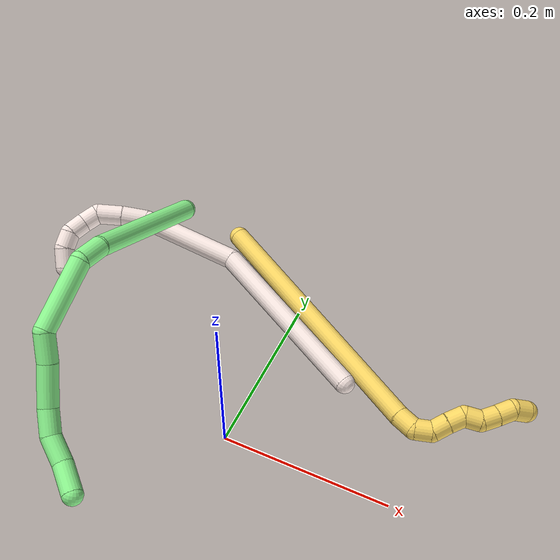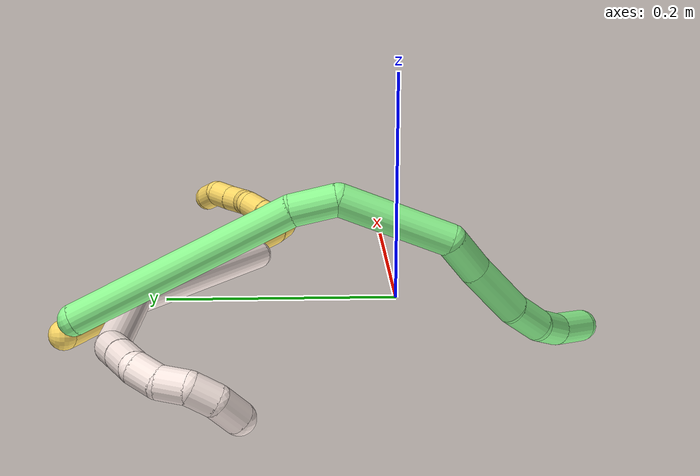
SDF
<sdf version="1.7">
 <world name="default">
  <model name="5">
   <static>0</static>
   <link name="5">
    <collision name="collision-cylinder-e_1_1_4">
     <pose>0.126631 -0.028595 -0.106588 2.87949 0.853961 2.57763</pose>
     <geometry><cylinder><radius>0.0125</radius><length>0.335942</length></cylinder></geometry>
     <surface>
      <friction><ode><mu>1.16</mu><mu2>1.16</mu2><slip1>0</slip1><slip2>0</slip2></ode></friction>
      <contact><ode><kp>1e+06</kp><kd>1</kd><max_vel>0</max_vel><min_depth>0.001</min_depth></ode></contact>
     </surface>
    </collision>
    <visual name="visual-cylinder-e_1_1_4">
     <pose>0.126631 -0.028595 -0.106588 2.87949 0.853961 2.57763</pose>
     <geometry><cylinder><radius>0.0125</radius><length>0.335942</length></cylinder></geometry>
     <material><ambient>1 0.858824 0.4 1</ambient></material>
    </visual>
    <collision name="collision-cylinder-e_2_4_5">
     <pose>0.262942 -0.059459 -0.219427 2.7932 0.968854 2.49616</pose>
     <geometry><cylinder><radius>0.0125</radius><length>0.023487</length></cylinder></geometry>
     <surface>
      <friction><ode><mu>1.16</mu><mu2>1.16</mu2><slip1>0</slip1><slip2>0</slip2></ode></friction>
      <contact><ode><kp>1e+06</kp><kd>1</kd><max_vel>0</max_vel><min_depth>0.001</min_depth></ode></contact>
     </surface>
    </collision>
    <visual name="visual-cylinder-e_2_4_5">
     <pose>0.262942 -0.059459 -0.219427 2.7932 0.968854 2.49616</pose>
     <geometry><cylinder><radius>0.0125</radius><length>0.023487</length></cylinder></geometry>
     <material><ambient>1 0.858824 0.4 1</ambient></material>
    </visual>
    <collision name="collision-cylinder-e_3_5_6">
     <pose>0.28267 -0.063217 -0.22434 0.838577 1.37428 0.701238</pose>
     <geometry><cylinder><radius>0.0125</radius><length>0.020491</length></cylinder></geometry>
     <surface>
      <friction><ode><mu>1.16</mu><mu2>1.16</mu2><slip1>0</slip1><slip2>0</slip2></ode></friction>
      <contact><ode><kp>1e+06</kp><kd>1</kd><max_vel>0</max_vel><min_depth>0.001</min_depth></ode></contact>
     </surface>
    </collision>
    <visual name="visual-cylinder-e_3_5_6">
     <pose>0.28267 -0.063217 -0.22434 0.838577 1.37428 0.701238</pose>
     <geometry><cylinder><radius>0.0125</radius><length>0.020491</length></cylinder></geometry>
     <material><ambient>1 0.858824 0.4 1</ambient></material>
    </visual>
    <collision name="collision-cylinder-e_4_6_7">
     <pose>0.299671 -0.068193 -0.216684 0.504385 0.76679 0.207128</pose>
     <geometry><cylinder><radius>0.0125</radius><length>0.020042</length></cylinder></geometry>
     <surface>
      <friction><ode><mu>1.16</mu><mu2>1.16</mu2><slip1>0</slip1><slip2>0</slip2></ode></friction>
      <contact><ode><kp>1e+06</kp><kd>1</kd><max_vel>0</max_vel><min_depth>0.001</min_depth></ode></contact>
     </surface>
    </collision>
    <visual name="visual-cylinder-e_4_6_7">
     <pose>0.299671 -0.068193 -0.216684 0.504385 0.76679 0.207128</pose>
     <geometry><cylinder><radius>0.0125</radius><length>0.020042</length></cylinder></geometry>
     <material><ambient>1 0.858824 0.4 1</ambient></material>
    </visual>
    <collision name="collision-cylinder-e_5_7_8">
     <pose>0.314091 -0.07492 -0.204549 0.50821 0.842515 0.231709</pose>
     <geometry><cylinder><radius>0.0125</radius><length>0.020009</length></cylinder></geometry>
     <surface>
      <friction><ode><mu>1.16</mu><mu2>1.16</mu2><slip1>0</slip1><slip2>0</slip2></ode></friction>
      <contact><ode><kp>1e+06</kp><kd>1</kd><max_vel>0</max_vel><min_depth>0.001</min_depth></ode></contact>
     </surface>
    </collision>
    <visual name="visual-cylinder-e_5_7_8">
     <pose>0.314091 -0.07492 -0.204549 0.50821 0.842515 0.231709</pose>
     <geometry><cylinder><radius>0.0125</radius><length>0.020009</length></cylinder></geometry>
     <material><ambient>1 0.858824 0.4 1</ambient></material>
    </visual>
    <collision name="collision-cylinder-e_6_8_9">
     <pose>0.331555 -0.078117 -0.198243 -0.089246 1.52171 -0.084974</pose>
     <geometry><cylinder><radius>0.0125</radius><length>0.02002</length></cylinder></geometry>
     <surface>
      <friction><ode><mu>1.16</mu><mu2>1.16</mu2><slip1>0</slip1><slip2>0</slip2></ode></friction>
      <contact><ode><kp>1e+06</kp><kd>1</kd><max_vel>0</max_vel><min_depth>0.001</min_depth></ode></contact>
     </surface>
    </collision>
    <visual name="visual-cylinder-e_6_8_9">
     <pose>0.331555 -0.078117 -0.198243 -0.089246 1.52171 -0.084974</pose>
     <geometry><cylinder><radius>0.0125</radius><length>0.02002</length></cylinder></geometry>
     <material><ambient>1 0.858824 0.4 1</ambient></material>
    </visual>
    <collision name="collision-cylinder-e_7_9_10">
     <pose>0.349531 -0.07933 -0.191856 0.209971 0.923527 0.104781</pose>
     <geometry><cylinder><radius>0.0125</radius><length>0.020001</length></cylinder></geometry>
     <surface>
      <friction><ode><mu>1.16</mu><mu2>1.16</mu2><slip1>0</slip1><slip2>0</slip2></ode></friction>
      <contact><ode><kp>1e+06</kp><kd>1</kd><max_vel>0</max_vel><min_depth>0.001</min_depth></ode></contact>
     </surface>
    </collision>
    <visual name="visual-cylinder-e_7_9_10">
     <pose>0.349531 -0.07933 -0.191856 0.209971 0.923527 0.104781</pose>
     <geometry><cylinder><radius>0.0125</radius><length>0.020001</length></cylinder></geometry>
     <material><ambient>1 0.858824 0.4 1</ambient></material>
    </visual>
    <collision name="collision-cylinder-e_8_10_11">
     <pose>0.365239 -0.082466 -0.179894 0.300566 0.883287 0.14294</pose>
     <geometry><cylinder><radius>0.0125</radius><length>0.020006</length></cylinder></geometry>
     <surface>
      <friction><ode><mu>1.16</mu><mu2>1.16</mu2><slip1>0</slip1><slip2>0</slip2></ode></friction>
      <contact><ode><kp>1e+06</kp><kd>1</kd><max_vel>0</max_vel><min_depth>0.001</min_depth></ode></contact>
     </surface>
    </collision>
    <visual name="visual-cylinder-e_8_10_11">
     <pose>0.365239 -0.082466 -0.179894 0.300566 0.883287 0.14294</pose>
     <geometry><cylinder><radius>0.0125</radius><length>0.020006</length></cylinder></geometry>
     <material><ambient>1 0.858824 0.4 1</ambient></material>
    </visual>
    <collision name="collision-cylinder-e_9_11_2">
     <pose>0.381737 -0.081172 -0.170213 -0.720224 1.06876 -0.438511</pose>
     <geometry><cylinder><radius>0.0125</radius><length>0.020002</length></cylinder></geometry>
     <surface>
      <friction><ode><mu>1.16</mu><mu2>1.16</mu2><slip1>0</slip1><slip2>0</slip2></ode></friction>
      <contact><ode><kp>1e+06</kp><kd>1</kd><max_vel>0</max_vel><min_depth>0.001</min_depth></ode></contact>
     </surface>
    </collision>
    <visual name="visual-cylinder-e_9_11_2">
     <pose>0.381737 -0.081172 -0.170213 -0.720224 1.06876 -0.438511</pose>
     <geometry><cylinder><radius>0.0125</radius><length>0.020002</length></cylinder></geometry>
     <material><ambient>1 0.858824 0.4 1</ambient></material>
    </visual>
    <collision name="collision-sphere-2">
     <pose>0.390504 -0.077997 -0.166596 0 -0 0</pose>
     <geometry><sphere><radius>0.0125</radius></sphere></geometry>
     <surface>
      <friction><ode><mu>1.16</mu><mu2>1.16</mu2><slip1>0</slip1><slip2>0</slip2></ode></friction>
      <contact><ode><kp>1e+06</kp><kd>1</kd><max_vel>0</max_vel><min_depth>0.001</min_depth></ode></contact>
     </surface>
    </collision>
    <visual name="visual-sphere-2">
     <pose>0.390504 -0.077997 -0.166596 0 -0 0</pose>
     <geometry><sphere><radius>0.0125</radius></sphere></geometry>
     <material><ambient>1 0.858824 0.4 1</ambient></material>
    </visual>
    <collision name="collision-sphere-11">
     <pose>0.37297 -0.084346 -0.173831 0 -0 0</pose>
     <geometry><sphere><radius>0.0125</radius></sphere></geometry>
     <surface>
      <friction><ode><mu>1.16</mu><mu2>1.16</mu2><slip1>0</slip1><slip2>0</slip2></ode></friction>
      <contact><ode><kp>1e+06</kp><kd>1</kd><max_vel>0</max_vel><min_depth>0.001</min_depth></ode></contact>
     </surface>
    </collision>
    <visual name="visual-sphere-11">
     <pose>0.37297 -0.084346 -0.173831 0 -0 0</pose>
     <geometry><sphere><radius>0.0125</radius></sphere></geometry>
     <material><ambient>1 0.858824 0.4 1</ambient></material>
    </visual>
    <collision name="collision-sphere-10">
     <pose>0.357508 -0.080587 -0.185958 0 -0 0</pose>
     <geometry><sphere><radius>0.0125</radius></sphere></geometry>
     <surface>
      <friction><ode><mu>1.16</mu><mu2>1.16</mu2><slip1>0</slip1><slip2>0</slip2></ode></friction>
      <contact><ode><kp>1e+06</kp><kd>1</kd><max_vel>0</max_vel><min_depth>0.001</min_depth></ode></contact>
     </surface>
    </collision>
    <visual name="visual-sphere-10">
     <pose>0.357508 -0.080587 -0.185958 0 -0 0</pose>
     <geometry><sphere><radius>0.0125</radius></sphere></geometry>
     <material><ambient>1 0.858824 0.4 1</ambient></material>
    </visual>
    <collision name="collision-sphere-9">
     <pose>0.341553 -0.078073 -0.197754 0 -0 0</pose>
     <geometry><sphere><radius>0.0125</radius></sphere></geometry>
     <surface>
      <friction><ode><mu>1.16</mu><mu2>1.16</mu2><slip1>0</slip1><slip2>0</slip2></ode></friction>
      <contact><ode><kp>1e+06</kp><kd>1</kd><max_vel>0</max_vel><min_depth>0.001</min_depth></ode></contact>
     </surface>
    </collision>
    <visual name="visual-sphere-9">
     <pose>0.341553 -0.078073 -0.197754 0 -0 0</pose>
     <geometry><sphere><radius>0.0125</radius></sphere></geometry>
     <material><ambient>1 0.858824 0.4 1</ambient></material>
    </visual>
    <collision name="collision-sphere-4">
     <pose>0.253263 -0.057189 -0.213177 0 -0 0</pose>
     <geometry><sphere><radius>0.0125</radius></sphere></geometry>
     <surface>
      <friction><ode><mu>1.16</mu><mu2>1.16</mu2><slip1>0</slip1><slip2>0</slip2></ode></friction>
      <contact><ode><kp>1e+06</kp><kd>1</kd><max_vel>0</max_vel><min_depth>0.001</min_depth></ode></contact>
     </surface>
    </collision>
    <visual name="visual-sphere-4">
     <pose>0.253263 -0.057189 -0.213177 0 -0 0</pose>
     <geometry><sphere><radius>0.0125</radius></sphere></geometry>
     <material><ambient>1 0.858824 0.4 1</ambient></material>
    </visual>
    <collision name="collision-sphere-1">
     <geometry><sphere><radius>0.0125</radius></sphere></geometry>
     <surface>
      <friction><ode><mu>1.16</mu><mu2>1.16</mu2><slip1>0</slip1><slip2>0</slip2></ode></friction>
      <contact><ode><kp>1e+06</kp><kd>1</kd><max_vel>0</max_vel><min_depth>0.001</min_depth></ode></contact>
     </surface>
    </collision>
    <visual name="visual-sphere-1">
     <geometry><sphere><radius>0.0125</radius></sphere></geometry>
     <material><ambient>1 0.858824 0.4 1</ambient></material>
    </visual>
    <collision name="collision-sphere-8">
     <pose>0.321557 -0.078161 -0.198732 0 -0 0</pose>
     <geometry><sphere><radius>0.0125</radius></sphere></geometry>
     <surface>
      <friction><ode><mu>1.16</mu><mu2>1.16</mu2><slip1>0</slip1><slip2>0</slip2></ode></friction>
      <contact><ode><kp>1e+06</kp><kd>1</kd><max_vel>0</max_vel><min_depth>0.001</min_depth></ode></contact>
     </surface>
    </collision>
    <visual name="visual-sphere-8">
     <pose>0.321557 -0.078161 -0.198732 0 -0 0</pose>
     <geometry><sphere><radius>0.0125</radius></sphere></geometry>
     <material><ambient>1 0.858824 0.4 1</ambient></material>
    </visual>
    <collision name="collision-sphere-5">
     <pose>0.272622 -0.06173 -0.225677 0 -0 0</pose>
     <geometry><sphere><radius>0.0125</radius></sphere></geometry>
     <surface>
      <friction><ode><mu>1.16</mu><mu2>1.16</mu2><slip1>0</slip1><slip2>0</slip2></ode></friction>
      <contact><ode><kp>1e+06</kp><kd>1</kd><max_vel>0</max_vel><min_depth>0.001</min_depth></ode></contact>
     </surface>
    </collision>
    <visual name="visual-sphere-5">
     <pose>0.272622 -0.06173 -0.225677 0 -0 0</pose>
     <geometry><sphere><radius>0.0125</radius></sphere></geometry>
     <material><ambient>1 0.858824 0.4 1</ambient></material>
    </visual>
    <collision name="collision-sphere-6">
     <pose>0.292718 -0.064705 -0.223002 0 -0 0</pose>
     <geometry><sphere><radius>0.0125</radius></sphere></geometry>
     <surface>
      <friction><ode><mu>1.16</mu><mu2>1.16</mu2><slip1>0</slip1><slip2>0</slip2></ode></friction>
      <contact><ode><kp>1e+06</kp><kd>1</kd><max_vel>0</max_vel><min_depth>0.001</min_depth></ode></contact>
     </surface>
    </collision>
    <visual name="visual-sphere-6">
     <pose>0.292718 -0.064705 -0.223002 0 -0 0</pose>
     <geometry><sphere><radius>0.0125</radius></sphere></geometry>
     <material><ambient>1 0.858824 0.4 1</ambient></material>
    </visual>
    <collision name="collision-sphere-7">
     <pose>0.306624 -0.07168 -0.210366 0 -0 0</pose>
     <geometry><sphere><radius>0.0125</radius></sphere></geometry>
     <surface>
      <friction><ode><mu>1.16</mu><mu2>1.16</mu2><slip1>0</slip1><slip2>0</slip2></ode></friction>
      <contact><ode><kp>1e+06</kp><kd>1</kd><max_vel>0</max_vel><min_depth>0.001</min_depth></ode></contact>
     </surface>
    </collision>
    <visual name="visual-sphere-7">
     <pose>0.306624 -0.07168 -0.210366 0 -0 0</pose>
     <geometry><sphere><radius>0.0125</radius></sphere></geometry>
     <material><ambient>1 0.858824 0.4 1</ambient></material>
    </visual>
    <inertial>
     <pose>0.190741 -0.043176 -0.137607 0 -0 0</pose>
     <mass>0.5</mass>
     <inertia>
      <ixx>-0.000612</ixx>
      <ixy>0</ixy>
      <ixz>0</ixz>
      <iyy>0.004042</iyy>
      <iyz>0</iyz>
      <izz>-0.001873</izz>
     </inertia>
    </inertial>
   </link>
   <pose>-0.120142 0.274727 0.011499 -1.50807 0.1689 0.172369</pose>
  </model>
  <model name="11">
   <static>0</static>
   <link name="11">
    <collision name="collision-cylinder-e_1_1_4">
     <pose>-0.015696 -0.012899 0.108315 0.11853 -0.142915 -0.008494</pose>
     <geometry><cylinder><radius>0.0125</radius><length>0.220407</length></cylinder></geometry>
     <surface>
      <friction><ode><mu>1.16</mu><mu2>1.16</mu2><slip1>0</slip1><slip2>0</slip2></ode></friction>
      <contact><ode><kp>1e+06</kp><kd>1</kd><max_vel>0</max_vel><min_depth>0.001</min_depth></ode></contact>
     </surface>
    </collision>
    <visual name="visual-cylinder-e_1_1_4">
     <pose>-0.015696 -0.012899 0.108315 0.11853 -0.142915 -0.008494</pose>
     <geometry><cylinder><radius>0.0125</radius><length>0.220407</length></cylinder></geometry>
     <material><ambient>1 0.933333 0.909804 1</ambient></material>
    </visual>
    <collision name="collision-cylinder-e_2_4_5">
     <pose>-0.04911 -0.009779 0.27562 -0.265163 -0.282124 0.037872</pose>
     <geometry><cylinder><radius>0.0125</radius><length>0.127286</length></cylinder></geometry>
     <surface>
      <friction><ode><mu>1.16</mu><mu2>1.16</mu2><slip1>0</slip1><slip2>0</slip2></ode></friction>
      <contact><ode><kp>1e+06</kp><kd>1</kd><max_vel>0</max_vel><min_depth>0.001</min_depth></ode></contact>
     </surface>
    </collision>
    <visual name="visual-cylinder-e_2_4_5">
     <pose>-0.04911 -0.009779 0.27562 -0.265163 -0.282124 0.037872</pose>
     <geometry><cylinder><radius>0.0125</radius><length>0.127286</length></cylinder></geometry>
     <material><ambient>1 0.933333 0.909804 1</ambient></material>
    </visual>
    <collision name="collision-cylinder-e_3_5_6">
     <pose>-0.074643 0.014058 0.345752 -0.611808 -0.521227 0.168047</pose>
     <geometry><cylinder><radius>0.0125</radius><length>0.031388</length></cylinder></geometry>
     <surface>
      <friction><ode><mu>1.16</mu><mu2>1.16</mu2><slip1>0</slip1><slip2>0</slip2></ode></friction>
      <contact><ode><kp>1e+06</kp><kd>1</kd><max_vel>0</max_vel><min_depth>0.001</min_depth></ode></contact>
     </surface>
    </collision>
    <visual name="visual-cylinder-e_3_5_6">
     <pose>-0.074643 0.014058 0.345752 -0.611808 -0.521227 0.168047</pose>
     <geometry><cylinder><radius>0.0125</radius><length>0.031388</length></cylinder></geometry>
     <material><ambient>1 0.933333 0.909804 1</ambient></material>
    </visual>
    <collision name="collision-cylinder-e_4_6_7">
     <pose>-0.089526 0.031035 0.367585 -0.708422 -0.465267 0.174785</pose>
     <geometry><cylinder><radius>0.0125</radius><length>0.031508</length></cylinder></geometry>
     <surface>
      <friction><ode><mu>1.16</mu><mu2>1.16</mu2><slip1>0</slip1><slip2>0</slip2></ode></friction>
      <contact><ode><kp>1e+06</kp><kd>1</kd><max_vel>0</max_vel><min_depth>0.001</min_depth></ode></contact>
     </surface>
    </collision>
    <visual name="visual-cylinder-e_4_6_7">
     <pose>-0.089526 0.031035 0.367585 -0.708422 -0.465267 0.174785</pose>
     <geometry><cylinder><radius>0.0125</radius><length>0.031508</length></cylinder></geometry>
     <material><ambient>1 0.933333 0.909804 1</ambient></material>
    </visual>
    <collision name="collision-cylinder-e_5_7_8">
     <pose>-0.099 0.050326 0.380426 -1.36169 -0.228263 0.185184</pose>
     <geometry><cylinder><radius>0.0125</radius><length>0.021264</length></cylinder></geometry>
     <surface>
      <friction><ode><mu>1.16</mu><mu2>1.16</mu2><slip1>0</slip1><slip2>0</slip2></ode></friction>
      <contact><ode><kp>1e+06</kp><kd>1</kd><max_vel>0</max_vel><min_depth>0.001</min_depth></ode></contact>
     </surface>
    </collision>
    <visual name="visual-cylinder-e_5_7_8">
     <pose>-0.099 0.050326 0.380426 -1.36169 -0.228263 0.185184</pose>
     <geometry><cylinder><radius>0.0125</radius><length>0.021264</length></cylinder></geometry>
     <material><ambient>1 0.933333 0.909804 1</ambient></material>
    </visual>
    <collision name="collision-cylinder-e_6_8_9">
     <pose>-0.106219 0.070621 0.381526 -1.67368 -0.440161 0.48617</pose>
     <geometry><cylinder><radius>0.0125</radius><length>0.02259</length></cylinder></geometry>
     <surface>
      <friction><ode><mu>1.16</mu><mu2>1.16</mu2><slip1>0</slip1><slip2>0</slip2></ode></friction>
      <contact><ode><kp>1e+06</kp><kd>1</kd><max_vel>0</max_vel><min_depth>0.001</min_depth></ode></contact>
     </surface>
    </collision>
    <visual name="visual-cylinder-e_6_8_9">
     <pose>-0.106219 0.070621 0.381526 -1.67368 -0.440161 0.48617</pose>
     <geometry><cylinder><radius>0.0125</radius><length>0.02259</length></cylinder></geometry>
     <material><ambient>1 0.933333 0.909804 1</ambient></material>
    </visual>
    <collision name="collision-cylinder-e_7_9_10">
     <pose>-0.110387 0.090556 0.376684 -1.94111 0.061441 -0.08973</pose>
     <geometry><cylinder><radius>0.0125</radius><length>0.021001</length></cylinder></geometry>
     <surface>
      <friction><ode><mu>1.16</mu><mu2>1.16</mu2><slip1>0</slip1><slip2>0</slip2></ode></friction>
      <contact><ode><kp>1e+06</kp><kd>1</kd><max_vel>0</max_vel><min_depth>0.001</min_depth></ode></contact>
     </surface>
    </collision>
    <visual name="visual-cylinder-e_7_9_10">
     <pose>-0.110387 0.090556 0.376684 -1.94111 0.061441 -0.08973</pose>
     <geometry><cylinder><radius>0.0125</radius><length>0.021001</length></cylinder></geometry>
     <material><ambient>1 0.933333 0.909804 1</ambient></material>
    </visual>
    <collision name="collision-cylinder-e_8_10_2">
     <pose>-0.104569 0.109262 0.366247 -2.21012 0.434911 -0.828341</pose>
     <geometry><cylinder><radius>0.0125</radius><length>0.024556</length></cylinder></geometry>
     <surface>
      <friction><ode><mu>1.16</mu><mu2>1.16</mu2><slip1>0</slip1><slip2>0</slip2></ode></friction>
      <contact><ode><kp>1e+06</kp><kd>1</kd><max_vel>0</max_vel><min_depth>0.001</min_depth></ode></contact>
     </surface>
    </collision>
    <visual name="visual-cylinder-e_8_10_2">
     <pose>-0.104569 0.109262 0.366247 -2.21012 0.434911 -0.828341</pose>
     <geometry><cylinder><radius>0.0125</radius><length>0.024556</length></cylinder></geometry>
     <material><ambient>1 0.933333 0.909804 1</ambient></material>
    </visual>
    <collision name="collision-sphere-2">
     <pose>-0.099395 0.118198 0.359604 0 -0 0</pose>
     <geometry><sphere><radius>0.0125</radius></sphere></geometry>
     <surface>
      <friction><ode><mu>1.16</mu><mu2>1.16</mu2><slip1>0</slip1><slip2>0</slip2></ode></friction>
      <contact><ode><kp>1e+06</kp><kd>1</kd><max_vel>0</max_vel><min_depth>0.001</min_depth></ode></contact>
     </surface>
    </collision>
    <visual name="visual-sphere-2">
     <pose>-0.099395 0.118198 0.359604 0 -0 0</pose>
     <geometry><sphere><radius>0.0125</radius></sphere></geometry>
     <material><ambient>1 0.933333 0.909804 1</ambient></material>
    </visual>
    <collision name="collision-sphere-10">
     <pose>-0.109742 0.100326 0.372891 0 -0 0</pose>
     <geometry><sphere><radius>0.0125</radius></sphere></geometry>
     <surface>
      <friction><ode><mu>1.16</mu><mu2>1.16</mu2><slip1>0</slip1><slip2>0</slip2></ode></friction>
      <contact><ode><kp>1e+06</kp><kd>1</kd><max_vel>0</max_vel><min_depth>0.001</min_depth></ode></contact>
     </surface>
    </collision>
    <visual name="visual-sphere-10">
     <pose>-0.109742 0.100326 0.372891 0 -0 0</pose>
     <geometry><sphere><radius>0.0125</radius></sphere></geometry>
     <material><ambient>1 0.933333 0.909804 1</ambient></material>
    </visual>
    <collision name="collision-sphere-9">
     <pose>-0.111031 0.080786 0.380477 0 -0 0</pose>
     <geometry><sphere><radius>0.0125</radius></sphere></geometry>
     <surface>
      <friction><ode><mu>1.16</mu><mu2>1.16</mu2><slip1>0</slip1><slip2>0</slip2></ode></friction>
      <contact><ode><kp>1e+06</kp><kd>1</kd><max_vel>0</max_vel><min_depth>0.001</min_depth></ode></contact>
     </surface>
    </collision>
    <visual name="visual-sphere-9">
     <pose>-0.111031 0.080786 0.380477 0 -0 0</pose>
     <geometry><sphere><radius>0.0125</radius></sphere></geometry>
     <material><ambient>1 0.933333 0.909804 1</ambient></material>
    </visual>
    <collision name="collision-sphere-4">
     <pose>-0.031392 -0.025798 0.216629 0 -0 0</pose>
     <geometry><sphere><radius>0.0125</radius></sphere></geometry>
     <surface>
      <friction><ode><mu>1.16</mu><mu2>1.16</mu2><slip1>0</slip1><slip2>0</slip2></ode></friction>
      <contact><ode><kp>1e+06</kp><kd>1</kd><max_vel>0</max_vel><min_depth>0.001</min_depth></ode></contact>
     </surface>
    </collision>
    <visual name="visual-sphere-4">
     <pose>-0.031392 -0.025798 0.216629 0 -0 0</pose>
     <geometry><sphere><radius>0.0125</radius></sphere></geometry>
     <material><ambient>1 0.933333 0.909804 1</ambient></material>
    </visual>
    <collision name="collision-sphere-1">
     <geometry><sphere><radius>0.0125</radius></sphere></geometry>
     <surface>
      <friction><ode><mu>1.16</mu><mu2>1.16</mu2><slip1>0</slip1><slip2>0</slip2></ode></friction>
      <contact><ode><kp>1e+06</kp><kd>1</kd><max_vel>0</max_vel><min_depth>0.001</min_depth></ode></contact>
     </surface>
    </collision>
    <visual name="visual-sphere-1">
     <geometry><sphere><radius>0.0125</radius></sphere></geometry>
     <material><ambient>1 0.933333 0.909804 1</ambient></material>
    </visual>
    <collision name="collision-sphere-8">
     <pose>-0.101406 0.060457 0.382576 0 -0 0</pose>
     <geometry><sphere><radius>0.0125</radius></sphere></geometry>
     <surface>
      <friction><ode><mu>1.16</mu><mu2>1.16</mu2><slip1>0</slip1><slip2>0</slip2></ode></friction>
      <contact><ode><kp>1e+06</kp><kd>1</kd><max_vel>0</max_vel><min_depth>0.001</min_depth></ode></contact>
     </surface>
    </collision>
    <visual name="visual-sphere-8">
     <pose>-0.101406 0.060457 0.382576 0 -0 0</pose>
     <geometry><sphere><radius>0.0125</radius></sphere></geometry>
     <material><ambient>1 0.933333 0.909804 1</ambient></material>
    </visual>
    <collision name="collision-sphere-5">
     <pose>-0.066828 0.006241 0.33461 0 -0 0</pose>
     <geometry><sphere><radius>0.0125</radius></sphere></geometry>
     <surface>
      <friction><ode><mu>1.16</mu><mu2>1.16</mu2><slip1>0</slip1><slip2>0</slip2></ode></friction>
      <contact><ode><kp>1e+06</kp><kd>1</kd><max_vel>0</max_vel><min_depth>0.001</min_depth></ode></contact>
     </surface>
    </collision>
    <visual name="visual-sphere-5">
     <pose>-0.066828 0.006241 0.33461 0 -0 0</pose>
     <geometry><sphere><radius>0.0125</radius></sphere></geometry>
     <material><ambient>1 0.933333 0.909804 1</ambient></material>
    </visual>
    <collision name="collision-sphere-6">
     <pose>-0.082458 0.021874 0.356893 0 -0 0</pose>
     <geometry><sphere><radius>0.0125</radius></sphere></geometry>
     <surface>
      <friction><ode><mu>1.16</mu><mu2>1.16</mu2><slip1>0</slip1><slip2>0</slip2></ode></friction>
      <contact><ode><kp>1e+06</kp><kd>1</kd><max_vel>0</max_vel><min_depth>0.001</min_depth></ode></contact>
     </surface>
    </collision>
    <visual name="visual-sphere-6">
     <pose>-0.082458 0.021874 0.356893 0 -0 0</pose>
     <geometry><sphere><radius>0.0125</radius></sphere></geometry>
     <material><ambient>1 0.933333 0.909804 1</ambient></material>
    </visual>
    <collision name="collision-sphere-7">
     <pose>-0.096594 0.040195 0.378276 0 -0 0</pose>
     <geometry><sphere><radius>0.0125</radius></sphere></geometry>
     <surface>
      <friction><ode><mu>1.16</mu><mu2>1.16</mu2><slip1>0</slip1><slip2>0</slip2></ode></friction>
      <contact><ode><kp>1e+06</kp><kd>1</kd><max_vel>0</max_vel><min_depth>0.001</min_depth></ode></contact>
     </surface>
    </collision>
    <visual name="visual-sphere-7">
     <pose>-0.096594 0.040195 0.378276 0 -0 0</pose>
     <geometry><sphere><radius>0.0125</radius></sphere></geometry>
     <material><ambient>1 0.933333 0.909804 1</ambient></material>
    </visual>
    <inertial>
     <pose>-0.04853 0.009163 0.230005 0 -0 0</pose>
     <mass>0.5</mass>
     <inertia><ixx>0.001066</ixx><ixy>0</ixy><ixz>0</ixz><iyy>0.00108</iyy><iyz>0</iyz><izz>0.00026</izz></inertia>
    </inertial>
   </link>
   <pose>0.095029 0.121171 0.011499 -1.72706 1.04861 1.00783</pose>
  </model>
  <model name="13">
   <static>0</static>
   <link name="13">
    <collision name="collision-cylinder-e_1_1_4">
     <pose>-0.001439 -0.092261 0.012999 1.43083 -0.015446 -0.013422</pose>
     <geometry><cylinder><radius>0.0125</radius><length>0.186367</length></cylinder></geometry>
     <surface>
      <friction><ode><mu>1.16</mu><mu2>1.16</mu2><slip1>0</slip1><slip2>0</slip2></ode></friction>
      <contact><ode><kp>1e+06</kp><kd>1</kd><max_vel>0</max_vel><min_depth>0.001</min_depth></ode></contact>
     </surface>
    </collision>
    <visual name="visual-cylinder-e_1_1_4">
     <pose>-0.001439 -0.092261 0.012999 1.43083 -0.015446 -0.013422</pose>
     <geometry><cylinder><radius>0.0125</radius><length>0.186367</length></cylinder></geometry>
     <material><ambient>0.564706 0.984314 0.572549 1</ambient></material>
    </visual>
    <collision name="collision-cylinder-e_2_4_5">
     <pose>-0.002494 -0.201235 0.03257 1.19611 0.021416 0.01459</pose>
     <geometry><cylinder><radius>0.0125</radius><length>0.035924</length></cylinder></geometry>
     <surface>
      <friction><ode><mu>1.16</mu><mu2>1.16</mu2><slip1>0</slip1><slip2>0</slip2></ode></friction>
      <contact><ode><kp>1e+06</kp><kd>1</kd><max_vel>0</max_vel><min_depth>0.001</min_depth></ode></contact>
     </surface>
    </collision>
    <visual name="visual-cylinder-e_2_4_5">
     <pose>-0.002494 -0.201235 0.03257 1.19611 0.021416 0.01459</pose>
     <geometry><cylinder><radius>0.0125</radius><length>0.035924</length></cylinder></geometry>
     <material><ambient>0.564706 0.984314 0.572549 1</ambient></material>
    </visual>
    <collision name="collision-cylinder-e_3_5_6">
     <pose>-0.00191 -0.241927 0.076499 0.570677 0.004487 0.001316</pose>
     <geometry><cylinder><radius>0.0125</radius><length>0.088783</length></cylinder></geometry>
     <surface>
      <friction><ode><mu>1.16</mu><mu2>1.16</mu2><slip1>0</slip1><slip2>0</slip2></ode></friction>
      <contact><ode><kp>1e+06</kp><kd>1</kd><max_vel>0</max_vel><min_depth>0.001</min_depth></ode></contact>
     </surface>
    </collision>
    <visual name="visual-cylinder-e_3_5_6">
     <pose>-0.00191 -0.241927 0.076499 0.570677 0.004487 0.001316</pose>
     <geometry><cylinder><radius>0.0125</radius><length>0.088783</length></cylinder></geometry>
     <material><ambient>0.564706 0.984314 0.572549 1</ambient></material>
    </visual>
    <collision name="collision-cylinder-e_4_6_7">
     <pose>-0.006762 -0.26551 0.130717 -0.023528 -0.290985 0.003448</pose>
     <geometry><cylinder><radius>0.0125</radius><length>0.035212</length></cylinder></geometry>
     <surface>
      <friction><ode><mu>1.16</mu><mu2>1.16</mu2><slip1>0</slip1><slip2>0</slip2></ode></friction>
      <contact><ode><kp>1e+06</kp><kd>1</kd><max_vel>0</max_vel><min_depth>0.001</min_depth></ode></contact>
     </surface>
    </collision>
    <visual name="visual-cylinder-e_4_6_7">
     <pose>-0.006762 -0.26551 0.130717 -0.023528 -0.290985 0.003448</pose>
     <geometry><cylinder><radius>0.0125</radius><length>0.035212</length></cylinder></geometry>
     <material><ambient>0.564706 0.984314 0.572549 1</ambient></material>
    </visual>
    <collision name="collision-cylinder-e_5_7_8">
     <pose>-0.017292 -0.266641 0.172152 0.062065 -0.21897 -0.006825</pose>
     <geometry><cylinder><radius>0.0125</radius><length>0.050448</length></cylinder></geometry>
     <surface>
      <friction><ode><mu>1.16</mu><mu2>1.16</mu2><slip1>0</slip1><slip2>0</slip2></ode></friction>
      <contact><ode><kp>1e+06</kp><kd>1</kd><max_vel>0</max_vel><min_depth>0.001</min_depth></ode></contact>
     </surface>
    </collision>
    <visual name="visual-cylinder-e_5_7_8">
     <pose>-0.017292 -0.266641 0.172152 0.062065 -0.21897 -0.006825</pose>
     <geometry><cylinder><radius>0.0125</radius><length>0.050448</length></cylinder></geometry>
     <material><ambient>0.564706 0.984314 0.572549 1</ambient></material>
    </visual>
    <collision name="collision-cylinder-e_6_8_9">
     <pose>-0.029131 -0.270835 0.211067 0.183891 -0.411134 -0.038447</pose>
     <geometry><cylinder><radius>0.0125</radius><length>0.031827</length></cylinder></geometry>
     <surface>
      <friction><ode><mu>1.16</mu><mu2>1.16</mu2><slip1>0</slip1><slip2>0</slip2></ode></friction>
      <contact><ode><kp>1e+06</kp><kd>1</kd><max_vel>0</max_vel><min_depth>0.001</min_depth></ode></contact>
     </surface>
    </collision>
    <visual name="visual-cylinder-e_6_8_9">
     <pose>-0.029131 -0.270835 0.211067 0.183891 -0.411134 -0.038447</pose>
     <geometry><cylinder><radius>0.0125</radius><length>0.031827</length></cylinder></geometry>
     <material><ambient>0.564706 0.984314 0.572549 1</ambient></material>
    </visual>
    <collision name="collision-cylinder-e_7_9_10">
     <pose>-0.047652 -0.275978 0.236716 0.215546 -0.810078 -0.092708</pose>
     <geometry><cylinder><radius>0.0125</radius><length>0.033579</length></cylinder></geometry>
     <surface>
      <friction><ode><mu>1.16</mu><mu2>1.16</mu2><slip1>0</slip1><slip2>0</slip2></ode></friction>
      <contact><ode><kp>1e+06</kp><kd>1</kd><max_vel>0</max_vel><min_depth>0.001</min_depth></ode></contact>
     </surface>
    </collision>
    <visual name="visual-cylinder-e_7_9_10">
     <pose>-0.047652 -0.275978 0.236716 0.215546 -0.810078 -0.092708</pose>
     <geometry><cylinder><radius>0.0125</radius><length>0.033579</length></cylinder></geometry>
     <material><ambient>0.564706 0.984314 0.572549 1</ambient></material>
    </visual>
    <collision name="collision-cylinder-e_8_10_2">
     <pose>-0.073452 -0.285346 0.259197 0.552723 -0.804451 -0.240153</pose>
     <geometry><cylinder><radius>0.0125</radius><length>0.037861</length></cylinder></geometry>
     <surface>
      <friction><ode><mu>1.16</mu><mu2>1.16</mu2><slip1>0</slip1><slip2>0</slip2></ode></friction>
      <contact><ode><kp>1e+06</kp><kd>1</kd><max_vel>0</max_vel><min_depth>0.001</min_depth></ode></contact>
     </surface>
    </collision>
    <visual name="visual-cylinder-e_8_10_2">
     <pose>-0.073452 -0.285346 0.259197 0.552723 -0.804451 -0.240153</pose>
     <geometry><cylinder><radius>0.0125</radius><length>0.037861</length></cylinder></geometry>
     <material><ambient>0.564706 0.984314 0.572549 1</ambient></material>
    </visual>
    <collision name="collision-sphere-2">
     <pose>-0.08709 -0.292239 0.270371 0 -0 0</pose>
     <geometry><sphere><radius>0.0125</radius></sphere></geometry>
     <surface>
      <friction><ode><mu>1.16</mu><mu2>1.16</mu2><slip1>0</slip1><slip2>0</slip2></ode></friction>
      <contact><ode><kp>1e+06</kp><kd>1</kd><max_vel>0</max_vel><min_depth>0.001</min_depth></ode></contact>
     </surface>
    </collision>
    <visual name="visual-sphere-2">
     <pose>-0.08709 -0.292239 0.270371 0 -0 0</pose>
     <geometry><sphere><radius>0.0125</radius></sphere></geometry>
     <material><ambient>0.564706 0.984314 0.572549 1</ambient></material>
    </visual>
    <collision name="collision-sphere-10">
     <pose>-0.059813 -0.278454 0.248023 0 -0 0</pose>
     <geometry><sphere><radius>0.0125</radius></sphere></geometry>
     <surface>
      <friction><ode><mu>1.16</mu><mu2>1.16</mu2><slip1>0</slip1><slip2>0</slip2></ode></friction>
      <contact><ode><kp>1e+06</kp><kd>1</kd><max_vel>0</max_vel><min_depth>0.001</min_depth></ode></contact>
     </surface>
    </collision>
    <visual name="visual-sphere-10">
     <pose>-0.059813 -0.278454 0.248023 0 -0 0</pose>
     <geometry><sphere><radius>0.0125</radius></sphere></geometry>
     <material><ambient>0.564706 0.984314 0.572549 1</ambient></material>
    </visual>
    <collision name="collision-sphere-9">
     <pose>-0.035491 -0.273502 0.225408 0 -0 0</pose>
     <geometry><sphere><radius>0.0125</radius></sphere></geometry>
     <surface>
      <friction><ode><mu>1.16</mu><mu2>1.16</mu2><slip1>0</slip1><slip2>0</slip2></ode></friction>
      <contact><ode><kp>1e+06</kp><kd>1</kd><max_vel>0</max_vel><min_depth>0.001</min_depth></ode></contact>
     </surface>
    </collision>
    <visual name="visual-sphere-9">
     <pose>-0.035491 -0.273502 0.225408 0 -0 0</pose>
     <geometry><sphere><radius>0.0125</radius></sphere></geometry>
     <material><ambient>0.564706 0.984314 0.572549 1</ambient></material>
    </visual>
    <collision name="collision-sphere-4">
     <pose>-0.002878 -0.184523 0.025998 0 -0 0</pose>
     <geometry><sphere><radius>0.0125</radius></sphere></geometry>
     <surface>
      <friction><ode><mu>1.16</mu><mu2>1.16</mu2><slip1>0</slip1><slip2>0</slip2></ode></friction>
      <contact><ode><kp>1e+06</kp><kd>1</kd><max_vel>0</max_vel><min_depth>0.001</min_depth></ode></contact>
     </surface>
    </collision>
    <visual name="visual-sphere-4">
     <pose>-0.002878 -0.184523 0.025998 0 -0 0</pose>
     <geometry><sphere><radius>0.0125</radius></sphere></geometry>
     <material><ambient>0.564706 0.984314 0.572549 1</ambient></material>
    </visual>
    <collision name="collision-sphere-1">
     <geometry><sphere><radius>0.0125</radius></sphere></geometry>
     <surface>
      <friction><ode><mu>1.16</mu><mu2>1.16</mu2><slip1>0</slip1><slip2>0</slip2></ode></friction>
      <contact><ode><kp>1e+06</kp><kd>1</kd><max_vel>0</max_vel><min_depth>0.001</min_depth></ode></contact>
     </surface>
    </collision>
    <visual name="visual-sphere-1">
     <geometry><sphere><radius>0.0125</radius></sphere></geometry>
     <material><ambient>0.564706 0.984314 0.572549 1</ambient></material>
    </visual>
    <collision name="collision-sphere-8">
     <pose>-0.022771 -0.268168 0.196726 0 -0 0</pose>
     <geometry><sphere><radius>0.0125</radius></sphere></geometry>
     <surface>
      <friction><ode><mu>1.16</mu><mu2>1.16</mu2><slip1>0</slip1><slip2>0</slip2></ode></friction>
      <contact><ode><kp>1e+06</kp><kd>1</kd><max_vel>0</max_vel><min_depth>0.001</min_depth></ode></contact>
     </surface>
    </collision>
    <visual name="visual-sphere-8">
     <pose>-0.022771 -0.268168 0.196726 0 -0 0</pose>
     <geometry><sphere><radius>0.0125</radius></sphere></geometry>
     <material><ambient>0.564706 0.984314 0.572549 1</ambient></material>
    </visual>
    <collision name="collision-sphere-5">
     <pose>-0.002109 -0.217947 0.039143 0 -0 0</pose>
     <geometry><sphere><radius>0.0125</radius></sphere></geometry>
     <surface>
      <friction><ode><mu>1.16</mu><mu2>1.16</mu2><slip1>0</slip1><slip2>0</slip2></ode></friction>
      <contact><ode><kp>1e+06</kp><kd>1</kd><max_vel>0</max_vel><min_depth>0.001</min_depth></ode></contact>
     </surface>
    </collision>
    <visual name="visual-sphere-5">
     <pose>-0.002109 -0.217947 0.039143 0 -0 0</pose>
     <geometry><sphere><radius>0.0125</radius></sphere></geometry>
     <material><ambient>0.564706 0.984314 0.572549 1</ambient></material>
    </visual>
    <collision name="collision-sphere-6">
     <pose>-0.001711 -0.265907 0.113856 0 -0 0</pose>
     <geometry><sphere><radius>0.0125</radius></sphere></geometry>
     <surface>
      <friction><ode><mu>1.16</mu><mu2>1.16</mu2><slip1>0</slip1><slip2>0</slip2></ode></friction>
      <contact><ode><kp>1e+06</kp><kd>1</kd><max_vel>0</max_vel><min_depth>0.001</min_depth></ode></contact>
     </surface>
    </collision>
    <visual name="visual-sphere-6">
     <pose>-0.001711 -0.265907 0.113856 0 -0 0</pose>
     <geometry><sphere><radius>0.0125</radius></sphere></geometry>
     <material><ambient>0.564706 0.984314 0.572549 1</ambient></material>
    </visual>
    <collision name="collision-sphere-7">
     <pose>-0.011813 -0.265113 0.147578 0 -0 0</pose>
     <geometry><sphere><radius>0.0125</radius></sphere></geometry>
     <surface>
      <friction><ode><mu>1.16</mu><mu2>1.16</mu2><slip1>0</slip1><slip2>0</slip2></ode></friction>
      <contact><ode><kp>1e+06</kp><kd>1</kd><max_vel>0</max_vel><min_depth>0.001</min_depth></ode></contact>
     </surface>
    </collision>
    <visual name="visual-sphere-7">
     <pose>-0.011813 -0.265113 0.147578 0 -0 0</pose>
     <geometry><sphere><radius>0.0125</radius></sphere></geometry>
     <material><ambient>0.564706 0.984314 0.572549 1</ambient></material>
    </visual>
    <inertial>
     <pose>-0.013892 -0.194787 0.096303 0 -0 0</pose>
     <mass>0.5</mass>
     <inertia>
      <ixx>0.000626</ixx>
      <ixy>0</ixy>
      <ixz>0</ixz>
      <iyy>0.00013</iyy>
      <iyz>0</iyz>
      <izz>0.000626</izz>
     </inertia>
    </inertial>
   </link>
   <pose>-0.188067 0.25793 0.047636 -2.51005 0.115364 3.1002</pose>
  </model>
 </world>
</sdf>
